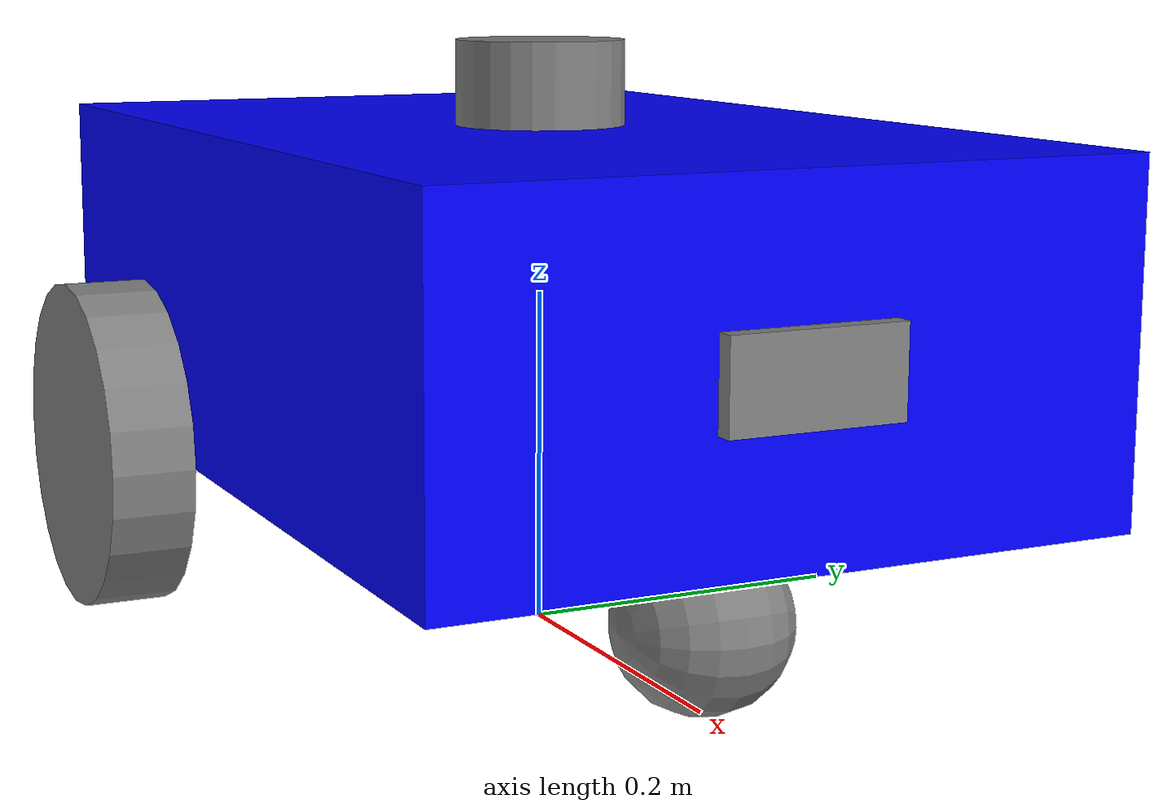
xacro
<?xml version="1.0"?>
<robot xmlns:xacro="http://www.ros.org/wiki/xacro" name="my_robot">

    <xacro:include filename="common_properties.xacro"/>
    <xacro:include filename="my_robot.xacro"/>
    <xacro:include filename="lidar.xacro"/>
    <xacro:include filename="imu.xacro"/>
    <xacro:include filename="camera.xacro"/>
    <xacro:include filename="gazebo_plugin.xacro"/>

    <joint name="lidar_joint" type="fixed">
        <origin xyz="0.0 0.0 ${base_height}" rpy="0.0 0.0 0.0"/>
        <parent link="base_link"/>
        <child link="lidar_link"/>
    </joint>

    <joint name="imu_joint" type="fixed">
        <origin xyz="0.0 0.0 ${base_height/2}" rpy="0.0 0.0 0.0"/>
        <parent link="base_link"/>
        <child link="imu_link"/>
    </joint>

    <joint name="camera_joint" type="fixed">
        <origin xyz="${base_length/2 + camera_length/2} 0.0 ${base_height/2}" rpy="0.0 0.0 0.0"/>
        <parent link="base_link"/>
        <child link="camera_link"/>
    </joint>

</robot>

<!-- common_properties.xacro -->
<robot xmlns:xacro="http://www.ros.org/wiki/xacro">

    <!-- Color -->
    <material name="blue">
        <color rgba="0.0 0.0 1.0 1.0"/>
    </material>
    <material name="grey">
        <color rgba="0.5 0.5 0.5 1.0"/>
    </material>

    <!-- Inertial -->
    <xacro:macro name="inertia_box" params="m l w h xyz rpy">
        <inertial>
            <origin xyz="${xyz}" rpy="${rpy}" />
            <mass value="${m}" />
            <inertia ixx="${(m/12)*(w*w + h*h)}" ixy="0" ixz="0"
                iyy="${(m/12)*(l*l + h*h)}" iyz="0"
                izz="${(m/12)*(l*l+ w*w)}" />
        </inertial>
    </xacro:macro>

    <xacro:macro name="inertia_cylinder" params="m r h xyz rpy">
        <inertial>
            <origin xzy="${xyz}" rpy="${rpy}" />
            <mass value="${m}" />
            <inertia ixx="${(m/12)*(3*r*r + h*h)}" ixy="0" ixz="0"
                iyy="${(m/12)*(3*r*r + h*h)}" iyz="0"
                izz="${(m/2)*(r*r)}" />
        </inertial>
    </xacro:macro>

    <xacro:macro name="inertia_sphere" params="r m xyz rpy">
        <inertial>
            <origin xzy="${xyz}" rpy="${rpy}" />
            <mass value="${m}" />
            <inertia ixx="${(2/5)*(m * r * r)}" ixy="0" ixz="0"
                iyy="${(2/5)*(m * r * r)}" iyz="0"
                izz="${(2/5)*(m * r * r)}" />
        </inertial>
    </xacro:macro>

</robot>

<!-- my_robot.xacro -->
<robot xmlns:xacro="http://www.ros.org/wiki/xacro">

    <xacro:property name="base_length" value="0.6"/>
    <xacro:property name="base_width" value="0.4"/>
    <xacro:property name="base_height" value="0.2"/>
    <xacro:property name="wheel_radius" value="0.1"/>
    <xacro:property name="wheel_length" value="0.05"/>
    <xacro:property name="caster_radius" value="0.05"/>

    <link name="base_footprint"/>

    <link name="base_link">
        <xacro:inertia_box m="5.0" l="${base_length}" w="${base_width}" h="${base_height}" xyz="0.0 0.0 ${base_height/2}" rpy="0.0 0.0 0.0"/>
        <visual name="">
            <origin xyz="0.0 0.0 ${base_height/2}" rpy="0.0 0.0 0.0"/>
            <geometry>
                <box size="${base_length} ${base_width} ${base_height}"/>
            </geometry>
            <material name="blue"/>
        </visual>
        <collision>
            <origin xyz="0.0 0.0 ${base_height/2}" rpy="0.0 0.0 0.0"/>
            <geometry>
                <box size="${base_length} ${base_width} ${base_height}"/>
            </geometry>
        </collision>
    </link>

    <xacro:macro name="wheel_link" params="prefix">
        <link name="${prefix}_wheel_link">
            <xacro:inertia_cylinder m="1.0" r="${wheel_radius}" h="${wheel_length}" xyz="0.0 0.0 0.0" rpy="1.57 0.0 0.0"/>
            <visual name="">
                <origin xyz="0.0 0.0 0.0" rpy="1.57 0.0 0.0"/>
                <geometry>
                    <cylinder radius="${wheel_radius}" length="${wheel_length}"/>
                </geometry>
                <material name="grey"/>
            </visual>
            <collision>
                <origin xyz="0.0 0.0 0.0" rpy="1.57 0.0 0.0"/>
                <geometry>
                    <cylinder radius="${wheel_radius}" length="${wheel_length}"/>
                </geometry>
            </collision>
        </link>
    </xacro:macro>

    <xacro:wheel_link prefix="left"/>
    <xacro:wheel_link prefix="right"/>

    <link name="caster_wheel_link">
        <xacro:inertia_sphere m="0.5" r="${caster_radius}" xyz="0.0 0.0 0.0" rpy="0.0 0.0 0.0"/>
        <visual name="">
            <origin xyz="0.0 0.0 0.0" rpy="1.57 0.0 0.0"/>
            <geometry>
                <sphere radius="${caster_radius}"/>
            </geometry>
            <material name="grey"/>
        </visual>
        <collision>
            <origin xyz="0.0 0.0 0.0" rpy="1.57 0.0 0.0"/>
            <geometry>
                <sphere radius="${caster_radius}"/>
            </geometry>
        </collision>
    </link>

    <joint name="base_footprint_joint" type="fixed">
        <origin xyz="0.0 0.0 ${wheel_radius}" rpy="0.0 0.0 0.0"/>
        <parent link="base_footprint"/>
        <child link="base_link"/>
    </joint>

    <joint name="left_wheel_joint" type="continuous">
        <origin xyz="${-base_length/4} ${((base_width/2) + (wheel_length/2))} 0.0" rpy="0.0 0.0 0.0"/>
        <parent link="base_link"/>
        <child link="left_wheel_link"/>
        <axis xyz="0.0 1.0 0.0"/>
    </joint>

    <joint name="right_wheel_joint" type="continuous">
        <origin xyz="${-base_length/4} ${-((base_width/2) + (wheel_length/2))} 0.0" rpy="0.0 0.0 0.0"/>
        <parent link="base_link"/>
        <child link="right_wheel_link"/>
        <axis xyz="0.0 1.0 0.0"/>
    </joint>

    <joint name="caster_wheel_joint" type="fixed">
        <origin xyz="${base_length/3} 0.0 ${-caster_radius}" rpy="0.0 0.0 0.0"/>
        <parent link="base_link"/>
        <child link="caster_wheel_link"/>
    </joint>

</robot>

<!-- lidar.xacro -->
<robot xmlns:xacro="http://www.ros.org/wiki/xacro">

    <xacro:property name="lidar_radius" value="0.05"/>
    <xacro:property name="lidar_length" value="0.05"/>

    <link name="lidar_link">
        <xacro:inertia_cylinder m="0.5" r="${lidar_radius}" h="${lidar_length}" xyz="0.0 0.0 ${lidar_length/2}" rpy="0.0 0.0 0.0"/>
        <visual name="">
            <origin xyz="0.0 0.0 ${lidar_length/2}" rpy="0.0 0.0 0.0"/>
            <geometry>
                <cylinder radius="${lidar_radius}" length="${lidar_length}"/>
            </geometry>
            <material name="grey"/>
        </visual>
        <collision>
            <origin xyz="0.0 0.0 ${lidar_length/2}" rpy="0.0 0.0 0.0"/>
            <geometry>
                <cylinder radius="${lidar_radius}" length="${lidar_length}"/>
            </geometry>
        </collision>
    </link>

</robot>

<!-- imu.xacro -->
<robot xmlns:xacro="http://www.ros.org/wiki/xacro">

    <xacro:property name="imu_length" value="0.025"/>

    <link name="imu_link">
        <xacro:inertia_box m="0.05" l="${imu_length}" w="${imu_length}" h="${imu_length}" xyz="0.0 0.0 0.0" rpy="0.0 0.0 0.0"/>
        <visual name="">
            <origin xyz="0.0 0.0 0.0" rpy="0.0 0.0 0.0"/>
            <geometry>
                <box size="${imu_length} ${imu_length} ${imu_length}"/>
            </geometry>
            <material name="grey"/>
        </visual>
        <collision>
            <origin xyz="0.0 0.0 0.0" rpy="0.0 0.0 0.0"/>
            <geometry>
                <box size="${imu_length} ${imu_length} ${imu_length}"/>
            </geometry>
        </collision>
    </link>

</robot>

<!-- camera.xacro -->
<robot xmlns:xacro="http://www.ros.org/wiki/xacro">

    <xacro:property name="camera_length" value="0.01"/>
    <xacro:property name="camera_width" value="0.1"/>
    <xacro:property name="camera_height" value="0.05"/>

    <link name="camera_link">
        <xacro:inertia_box m="0.1" l="${camera_length}" w="${camera_width}" h="${camera_height}" xyz="0.0 0.0 0.0" rpy="0.0 0.0 0.0"/>
        <visual name="">
            <origin xyz="0.0 0.0 0.0" rpy="0.0 0.0 0.0"/>
            <geometry>
                <box size="${camera_length} ${camera_width} ${camera_height}"/>
            </geometry>
            <material name="grey"/>
        </visual>
        <collision>
            <origin xyz="0.0 0.0 0.0" rpy="0.0 0.0 0.0"/>
            <geometry>
                <box size="${camera_length} ${camera_width} ${camera_height}"/>
            </geometry>
        </collision>
    </link>

</robot>
